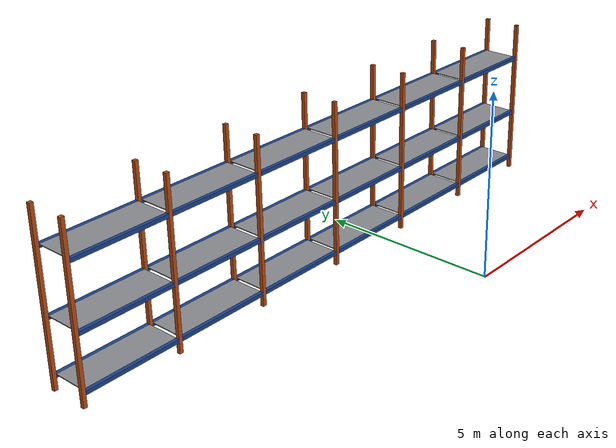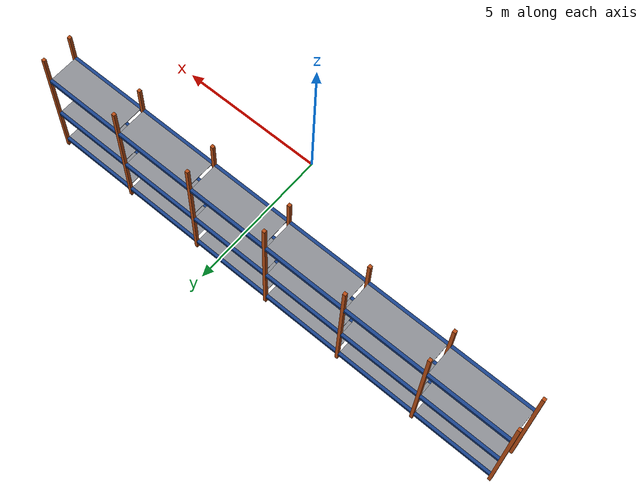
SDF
<sdf version="1.9">
 <world name="warehouse">
  <model name="rack_D">
   <static>true</static>
   <link name="frame">
    <visual name="up_0_f_v">
     <pose>-10 3.35 2.25 0 0 0</pose>
     <geometry><box><size>0.1 0.1 4.5</size></box></geometry>
     <material>
      <ambient>0.36 0.15 0.04 1</ambient>
      <diffuse>0.72 0.3 0.08 1</diffuse>
      <specular>0.05 0.05 0.05 1</specular>
      <pbr><metal><metalness>0.0</metalness><roughness>0.9</roughness></metal></pbr>
     </material>
    </visual>
    <collision name="up_0_f_c">
     <pose>-10 3.35 2.25 0 0 0</pose>
     <geometry><box><size>0.1 0.1 4.5</size></box></geometry>
    </collision>
    <visual name="up_0_b_v">
     <pose>-10 4.35 2.25 0 0 0</pose>
     <geometry><box><size>0.1 0.1 4.5</size></box></geometry>
     <material>
      <ambient>0.36 0.15 0.04 1</ambient>
      <diffuse>0.72 0.3 0.08 1</diffuse>
      <specular>0.05 0.05 0.05 1</specular>
      <pbr><metal><metalness>0.0</metalness><roughness>0.9</roughness></metal></pbr>
     </material>
    </visual>
    <collision name="up_0_b_c">
     <pose>-10 4.35 2.25 0 0 0</pose>
     <geometry><box><size>0.1 0.1 4.5</size></box></geometry>
    </collision>
    <visual name="up_1_f_v">
     <pose>-7.3 3.35 2.25 0 0 0</pose>
     <geometry><box><size>0.1 0.1 4.5</size></box></geometry>
     <material>
      <ambient>0.36 0.15 0.04 1</ambient>
      <diffuse>0.72 0.3 0.08 1</diffuse>
      <specular>0.05 0.05 0.05 1</specular>
      <pbr><metal><metalness>0.0</metalness><roughness>0.9</roughness></metal></pbr>
     </material>
    </visual>
    <collision name="up_1_f_c">
     <pose>-7.3 3.35 2.25 0 0 0</pose>
     <geometry><box><size>0.1 0.1 4.5</size></box></geometry>
    </collision>
    <visual name="up_1_b_v">
     <pose>-7.3 4.35 2.25 0 0 0</pose>
     <geometry><box><size>0.1 0.1 4.5</size></box></geometry>
     <material>
      <ambient>0.36 0.15 0.04 1</ambient>
      <diffuse>0.72 0.3 0.08 1</diffuse>
      <specular>0.05 0.05 0.05 1</specular>
      <pbr><metal><metalness>0.0</metalness><roughness>0.9</roughness></metal></pbr>
     </material>
    </visual>
    <collision name="up_1_b_c">
     <pose>-7.3 4.35 2.25 0 0 0</pose>
     <geometry><box><size>0.1 0.1 4.5</size></box></geometry>
    </collision>
    <visual name="up_2_f_v">
     <pose>-4.6 3.35 2.25 0 0 0</pose>
     <geometry><box><size>0.1 0.1 4.5</size></box></geometry>
     <material>
      <ambient>0.36 0.15 0.04 1</ambient>
      <diffuse>0.72 0.3 0.08 1</diffuse>
      <specular>0.05 0.05 0.05 1</specular>
      <pbr><metal><metalness>0.0</metalness><roughness>0.9</roughness></metal></pbr>
     </material>
    </visual>
    <collision name="up_2_f_c">
     <pose>-4.6 3.35 2.25 0 0 0</pose>
     <geometry><box><size>0.1 0.1 4.5</size></box></geometry>
    </collision>
    <visual name="up_2_b_v">
     <pose>-4.6 4.35 2.25 0 0 0</pose>
     <geometry><box><size>0.1 0.1 4.5</size></box></geometry>
     <material>
      <ambient>0.36 0.15 0.04 1</ambient>
      <diffuse>0.72 0.3 0.08 1</diffuse>
      <specular>0.05 0.05 0.05 1</specular>
      <pbr><metal><metalness>0.0</metalness><roughness>0.9</roughness></metal></pbr>
     </material>
    </visual>
    <collision name="up_2_b_c">
     <pose>-4.6 4.35 2.25 0 0 0</pose>
     <geometry><box><size>0.1 0.1 4.5</size></box></geometry>
    </collision>
    <visual name="up_3_f_v">
     <pose>-1.9 3.35 2.25 0 0 0</pose>
     <geometry><box><size>0.1 0.1 4.5</size></box></geometry>
     <material>
      <ambient>0.36 0.15 0.04 1</ambient>
      <diffuse>0.72 0.3 0.08 1</diffuse>
      <specular>0.05 0.05 0.05 1</specular>
      <pbr><metal><metalness>0.0</metalness><roughness>0.9</roughness></metal></pbr>
     </material>
    </visual>
    <collision name="up_3_f_c">
     <pose>-1.9 3.35 2.25 0 0 0</pose>
     <geometry><box><size>0.1 0.1 4.5</size></box></geometry>
    </collision>
    <visual name="up_3_b_v">
     <pose>-1.9 4.35 2.25 0 0 0</pose>
     <geometry><box><size>0.1 0.1 4.5</size></box></geometry>
     <material>
      <ambient>0.36 0.15 0.04 1</ambient>
      <diffuse>0.72 0.3 0.08 1</diffuse>
      <specular>0.05 0.05 0.05 1</specular>
      <pbr><metal><metalness>0.0</metalness><roughness>0.9</roughness></metal></pbr>
     </material>
    </visual>
    <collision name="up_3_b_c">
     <pose>-1.9 4.35 2.25 0 0 0</pose>
     <geometry><box><size>0.1 0.1 4.5</size></box></geometry>
    </collision>
    <visual name="up_4_f_v">
     <pose>0.8 3.35 2.25 0 0 0</pose>
     <geometry><box><size>0.1 0.1 4.5</size></box></geometry>
     <material>
      <ambient>0.36 0.15 0.04 1</ambient>
      <diffuse>0.72 0.3 0.08 1</diffuse>
      <specular>0.05 0.05 0.05 1</specular>
      <pbr><metal><metalness>0.0</metalness><roughness>0.9</roughness></metal></pbr>
     </material>
    </visual>
    <collision name="up_4_f_c">
     <pose>0.8 3.35 2.25 0 0 0</pose>
     <geometry><box><size>0.1 0.1 4.5</size></box></geometry>
    </collision>
    <visual name="up_4_b_v">
     <pose>0.8 4.35 2.25 0 0 0</pose>
     <geometry><box><size>0.1 0.1 4.5</size></box></geometry>
     <material>
      <ambient>0.36 0.15 0.04 1</ambient>
      <diffuse>0.72 0.3 0.08 1</diffuse>
      <specular>0.05 0.05 0.05 1</specular>
      <pbr><metal><metalness>0.0</metalness><roughness>0.9</roughness></metal></pbr>
     </material>
    </visual>
    <collision name="up_4_b_c">
     <pose>0.8 4.35 2.25 0 0 0</pose>
     <geometry><box><size>0.1 0.1 4.5</size></box></geometry>
    </collision>
    <visual name="up_5_f_v">
     <pose>3.5 3.35 2.25 0 0 0</pose>
     <geometry><box><size>0.1 0.1 4.5</size></box></geometry>
     <material>
      <ambient>0.36 0.15 0.04 1</ambient>
      <diffuse>0.72 0.3 0.08 1</diffuse>
      <specular>0.05 0.05 0.05 1</specular>
      <pbr><metal><metalness>0.0</metalness><roughness>0.9</roughness></metal></pbr>
     </material>
    </visual>
    <collision name="up_5_f_c">
     <pose>3.5 3.35 2.25 0 0 0</pose>
     <geometry><box><size>0.1 0.1 4.5</size></box></geometry>
    </collision>
    <visual name="up_5_b_v">
     <pose>3.5 4.35 2.25 0 0 0</pose>
     <geometry><box><size>0.1 0.1 4.5</size></box></geometry>
     <material>
      <ambient>0.36 0.15 0.04 1</ambient>
      <diffuse>0.72 0.3 0.08 1</diffuse>
      <specular>0.05 0.05 0.05 1</specular>
      <pbr><metal><metalness>0.0</metalness><roughness>0.9</roughness></metal></pbr>
     </material>
    </visual>
    <collision name="up_5_b_c">
     <pose>3.5 4.35 2.25 0 0 0</pose>
     <geometry><box><size>0.1 0.1 4.5</size></box></geometry>
    </collision>
    <visual name="up_6_f_v">
     <pose>6.2 3.35 2.25 0 0 0</pose>
     <geometry><box><size>0.1 0.1 4.5</size></box></geometry>
     <material>
      <ambient>0.36 0.15 0.04 1</ambient>
      <diffuse>0.72 0.3 0.08 1</diffuse>
      <specular>0.05 0.05 0.05 1</specular>
      <pbr><metal><metalness>0.0</metalness><roughness>0.9</roughness></metal></pbr>
     </material>
    </visual>
    <collision name="up_6_f_c">
     <pose>6.2 3.35 2.25 0 0 0</pose>
     <geometry><box><size>0.1 0.1 4.5</size></box></geometry>
    </collision>
    <visual name="up_6_b_v">
     <pose>6.2 4.35 2.25 0 0 0</pose>
     <geometry><box><size>0.1 0.1 4.5</size></box></geometry>
     <material>
      <ambient>0.36 0.15 0.04 1</ambient>
      <diffuse>0.72 0.3 0.08 1</diffuse>
      <specular>0.05 0.05 0.05 1</specular>
      <pbr><metal><metalness>0.0</metalness><roughness>0.9</roughness></metal></pbr>
     </material>
    </visual>
    <collision name="up_6_b_c">
     <pose>6.2 4.35 2.25 0 0 0</pose>
     <geometry><box><size>0.1 0.1 4.5</size></box></geometry>
    </collision>
    <visual name="beam_0_0_f_v">
     <pose>-8.65 3.35 0.35 0 0 0</pose>
     <geometry><box><size>2.6 0.1 0.1</size></box></geometry>
     <material>
      <ambient>0.05 0.13 0.275 1</ambient>
      <diffuse>0.1 0.26 0.55 1</diffuse>
      <specular>0.05 0.05 0.05 1</specular>
      <pbr><metal><metalness>0.0</metalness><roughness>0.9</roughness></metal></pbr>
     </material>
    </visual>
    <collision name="beam_0_0_f_c">
     <pose>-8.65 3.35 0.35 0 0 0</pose>
     <geometry><box><size>2.6 0.1 0.1</size></box></geometry>
    </collision>
    <visual name="beam_0_0_b_v">
     <pose>-8.65 4.35 0.35 0 0 0</pose>
     <geometry><box><size>2.6 0.1 0.1</size></box></geometry>
     <material>
      <ambient>0.05 0.13 0.275 1</ambient>
      <diffuse>0.1 0.26 0.55 1</diffuse>
      <specular>0.05 0.05 0.05 1</specular>
      <pbr><metal><metalness>0.0</metalness><roughness>0.9</roughness></metal></pbr>
     </material>
    </visual>
    <collision name="beam_0_0_b_c">
     <pose>-8.65 4.35 0.35 0 0 0</pose>
     <geometry><box><size>2.6 0.1 0.1</size></box></geometry>
    </collision>
    <visual name="deck_0_0_v">
     <pose>-8.65 3.85 0.39 0 0 0</pose>
     <geometry><box><size>2.6 0.9 0.02</size></box></geometry>
     <material>
      <ambient>0.275 0.28 0.29 1</ambient>
      <diffuse>0.55 0.56 0.58 1</diffuse>
      <specular>0.05 0.05 0.05 1</specular>
      <pbr><metal><metalness>0.0</metalness><roughness>0.9</roughness></metal></pbr>
     </material>
    </visual>
    <collision name="deck_0_0_c">
     <pose>-8.65 3.85 0.39 0 0 0</pose>
     <geometry><box><size>2.6 0.9 0.02</size></box></geometry>
    </collision>
    <visual name="beam_0_1_f_v">
     <pose>-5.95 3.35 0.35 0 0 0</pose>
     <geometry><box><size>2.6 0.1 0.1</size></box></geometry>
     <material>
      <ambient>0.05 0.13 0.275 1</ambient>
      <diffuse>0.1 0.26 0.55 1</diffuse>
      <specular>0.05 0.05 0.05 1</specular>
      <pbr><metal><metalness>0.0</metalness><roughness>0.9</roughness></metal></pbr>
     </material>
    </visual>
    <collision name="beam_0_1_f_c">
     <pose>-5.95 3.35 0.35 0 0 0</pose>
     <geometry><box><size>2.6 0.1 0.1</size></box></geometry>
    </collision>
    <visual name="beam_0_1_b_v">
     <pose>-5.95 4.35 0.35 0 0 0</pose>
     <geometry><box><size>2.6 0.1 0.1</size></box></geometry>
     <material>
      <ambient>0.05 0.13 0.275 1</ambient>
      <diffuse>0.1 0.26 0.55 1</diffuse>
      <specular>0.05 0.05 0.05 1</specular>
      <pbr><metal><metalness>0.0</metalness><roughness>0.9</roughness></metal></pbr>
     </material>
    </visual>
    <collision name="beam_0_1_b_c">
     <pose>-5.95 4.35 0.35 0 0 0</pose>
     <geometry><box><size>2.6 0.1 0.1</size></box></geometry>
    </collision>
    <visual name="deck_0_1_v">
     <pose>-5.95 3.85 0.39 0 0 0</pose>
     <geometry><box><size>2.6 0.9 0.02</size></box></geometry>
     <material>
      <ambient>0.275 0.28 0.29 1</ambient>
      <diffuse>0.55 0.56 0.58 1</diffuse>
      <specular>0.05 0.05 0.05 1</specular>
      <pbr><metal><metalness>0.0</metalness><roughness>0.9</roughness></metal></pbr>
     </material>
    </visual>
    <collision name="deck_0_1_c">
     <pose>-5.95 3.85 0.39 0 0 0</pose>
     <geometry><box><size>2.6 0.9 0.02</size></box></geometry>
    </collision>
    <visual name="beam_0_2_f_v">
     <pose>-3.25 3.35 0.35 0 0 0</pose>
     <geometry><box><size>2.6 0.1 0.1</size></box></geometry>
     <material>
      <ambient>0.05 0.13 0.275 1</ambient>
      <diffuse>0.1 0.26 0.55 1</diffuse>
      <specular>0.05 0.05 0.05 1</specular>
      <pbr><metal><metalness>0.0</metalness><roughness>0.9</roughness></metal></pbr>
     </material>
    </visual>
    <collision name="beam_0_2_f_c">
     <pose>-3.25 3.35 0.35 0 0 0</pose>
     <geometry><box><size>2.6 0.1 0.1</size></box></geometry>
    </collision>
    <visual name="beam_0_2_b_v">
     <pose>-3.25 4.35 0.35 0 0 0</pose>
     <geometry><box><size>2.6 0.1 0.1</size></box></geometry>
     <material>
      <ambient>0.05 0.13 0.275 1</ambient>
      <diffuse>0.1 0.26 0.55 1</diffuse>
      <specular>0.05 0.05 0.05 1</specular>
      <pbr><metal><metalness>0.0</metalness><roughness>0.9</roughness></metal></pbr>
     </material>
    </visual>
    <collision name="beam_0_2_b_c">
     <pose>-3.25 4.35 0.35 0 0 0</pose>
     <geometry><box><size>2.6 0.1 0.1</size></box></geometry>
    </collision>
    <visual name="deck_0_2_v">
     <pose>-3.25 3.85 0.39 0 0 0</pose>
     <geometry><box><size>2.6 0.9 0.02</size></box></geometry>
     <material>
      <ambient>0.275 0.28 0.29 1</ambient>
      <diffuse>0.55 0.56 0.58 1</diffuse>
      <specular>0.05 0.05 0.05 1</specular>
      <pbr><metal><metalness>0.0</metalness><roughness>0.9</roughness></metal></pbr>
     </material>
    </visual>
    <collision name="deck_0_2_c">
     <pose>-3.25 3.85 0.39 0 0 0</pose>
     <geometry><box><size>2.6 0.9 0.02</size></box></geometry>
    </collision>
    <visual name="beam_0_3_f_v">
     <pose>-0.55 3.35 0.35 0 0 0</pose>
     <geometry><box><size>2.6 0.1 0.1</size></box></geometry>
     <material>
      <ambient>0.05 0.13 0.275 1</ambient>
      <diffuse>0.1 0.26 0.55 1</diffuse>
      <specular>0.05 0.05 0.05 1</specular>
      <pbr><metal><metalness>0.0</metalness><roughness>0.9</roughness></metal></pbr>
     </material>
    </visual>
    <collision name="beam_0_3_f_c">
     <pose>-0.55 3.35 0.35 0 0 0</pose>
     <geometry><box><size>2.6 0.1 0.1</size></box></geometry>
    </collision>
    <visual name="beam_0_3_b_v">
     <pose>-0.55 4.35 0.35 0 0 0</pose>
     <geometry><box><size>2.6 0.1 0.1</size></box></geometry>
     <material>
      <ambient>0.05 0.13 0.275 1</ambient>
      <diffuse>0.1 0.26 0.55 1</diffuse>
      <specular>0.05 0.05 0.05 1</specular>
      <pbr><metal><metalness>0.0</metalness><roughness>0.9</roughness></metal></pbr>
     </material>
    </visual>
    <collision name="beam_0_3_b_c">
     <pose>-0.55 4.35 0.35 0 0 0</pose>
     <geometry><box><size>2.6 0.1 0.1</size></box></geometry>
    </collision>
    <visual name="deck_0_3_v">
     <pose>-0.55 3.85 0.39 0 0 0</pose>
     <geometry><box><size>2.6 0.9 0.02</size></box></geometry>
     <material>
      <ambient>0.275 0.28 0.29 1</ambient>
      <diffuse>0.55 0.56 0.58 1</diffuse>
      <specular>0.05 0.05 0.05 1</specular>
      <pbr><metal><metalness>0.0</metalness><roughness>0.9</roughness></metal></pbr>
     </material>
    </visual>
    <collision name="deck_0_3_c">
     <pose>-0.55 3.85 0.39 0 0 0</pose>
     <geometry><box><size>2.6 0.9 0.02</size></box></geometry>
    </collision>
    <visual name="beam_0_4_f_v">
     <pose>2.15 3.35 0.35 0 0 0</pose>
     <geometry><box><size>2.6 0.1 0.1</size></box></geometry>
     <material>
      <ambient>0.05 0.13 0.275 1</ambient>
      <diffuse>0.1 0.26 0.55 1</diffuse>
      <specular>0.05 0.05 0.05 1</specular>
      <pbr><metal><metalness>0.0</metalness><roughness>0.9</roughness></metal></pbr>
     </material>
    </visual>
    <collision name="beam_0_4_f_c">
     <pose>2.15 3.35 0.35 0 0 0</pose>
     <geometry><box><size>2.6 0.1 0.1</size></box></geometry>
    </collision>
    <visual name="beam_0_4_b_v">
     <pose>2.15 4.35 0.35 0 0 0</pose>
     <geometry><box><size>2.6 0.1 0.1</size></box></geometry>
     <material>
      <ambient>0.05 0.13 0.275 1</ambient>
      <diffuse>0.1 0.26 0.55 1</diffuse>
      <specular>0.05 0.05 0.05 1</specular>
      <pbr><metal><metalness>0.0</metalness><roughness>0.9</roughness></metal></pbr>
     </material>
    </visual>
    <collision name="beam_0_4_b_c">
     <pose>2.15 4.35 0.35 0 0 0</pose>
     <geometry><box><size>2.6 0.1 0.1</size></box></geometry>
    </collision>
    <visual name="deck_0_4_v">
     <pose>2.15 3.85 0.39 0 0 0</pose>
     <geometry><box><size>2.6 0.9 0.02</size></box></geometry>
     <material>
      <ambient>0.275 0.28 0.29 1</ambient>
      <diffuse>0.55 0.56 0.58 1</diffuse>
      <specular>0.05 0.05 0.05 1</specular>
      <pbr><metal><metalness>0.0</metalness><roughness>0.9</roughness></metal></pbr>
     </material>
    </visual>
    <collision name="deck_0_4_c">
     <pose>2.15 3.85 0.39 0 0 0</pose>
     <geometry><box><size>2.6 0.9 0.02</size></box></geometry>
    </collision>
    <visual name="beam_0_5_f_v">
     <pose>4.85 3.35 0.35 0 0 0</pose>
     <geometry><box><size>2.6 0.1 0.1</size></box></geometry>
     <material>
      <ambient>0.05 0.13 0.275 1</ambient>
      <diffuse>0.1 0.26 0.55 1</diffuse>
      <specular>0.05 0.05 0.05 1</specular>
      <pbr><metal><metalness>0.0</metalness><roughness>0.9</roughness></metal></pbr>
     </material>
    </visual>
    <collision name="beam_0_5_f_c">
     <pose>4.85 3.35 0.35 0 0 0</pose>
     <geometry><box><size>2.6 0.1 0.1</size></box></geometry>
    </collision>
    <visual name="beam_0_5_b_v">
     <pose>4.85 4.35 0.35 0 0 0</pose>
     <geometry><box><size>2.6 0.1 0.1</size></box></geometry>
     <material>
      <ambient>0.05 0.13 0.275 1</ambient>
      <diffuse>0.1 0.26 0.55 1</diffuse>
      <specular>0.05 0.05 0.05 1</specular>
      <pbr><metal><metalness>0.0</metalness><roughness>0.9</roughness></metal></pbr>
     </material>
    </visual>
    <collision name="beam_0_5_b_c">
     <pose>4.85 4.35 0.35 0 0 0</pose>
     <geometry><box><size>2.6 0.1 0.1</size></box></geometry>
    </collision>
    <visual name="deck_0_5_v">
     <pose>4.85 3.85 0.39 0 0 0</pose>
     <geometry><box><size>2.6 0.9 0.02</size></box></geometry>
     <material>
      <ambient>0.275 0.28 0.29 1</ambient>
      <diffuse>0.55 0.56 0.58 1</diffuse>
      <specular>0.05 0.05 0.05 1</specular>
      <pbr><metal><metalness>0.0</metalness><roughness>0.9</roughness></metal></pbr>
     </material>
    </visual>
    <collision name="deck_0_5_c">
     <pose>4.85 3.85 0.39 0 0 0</pose>
     <geometry><box><size>2.6 0.9 0.02</size></box></geometry>
    </collision>
    <visual name="beam_1_0_f_v">
     <pose>-8.65 3.35 1.8 0 0 0</pose>
     <geometry><box><size>2.6 0.1 0.1</size></box></geometry>
     <material>
      <ambient>0.05 0.13 0.275 1</ambient>
      <diffuse>0.1 0.26 0.55 1</diffuse>
      <specular>0.05 0.05 0.05 1</specular>
      <pbr><metal><metalness>0.0</metalness><roughness>0.9</roughness></metal></pbr>
     </material>
    </visual>
    <collision name="beam_1_0_f_c">
     <pose>-8.65 3.35 1.8 0 0 0</pose>
     <geometry><box><size>2.6 0.1 0.1</size></box></geometry>
    </collision>
    <visual name="beam_1_0_b_v">
     <pose>-8.65 4.35 1.8 0 0 0</pose>
     <geometry><box><size>2.6 0.1 0.1</size></box></geometry>
     <material>
      <ambient>0.05 0.13 0.275 1</ambient>
      <diffuse>0.1 0.26 0.55 1</diffuse>
      <specular>0.05 0.05 0.05 1</specular>
      <pbr><metal><metalness>0.0</metalness><roughness>0.9</roughness></metal></pbr>
     </material>
    </visual>
    <collision name="beam_1_0_b_c">
     <pose>-8.65 4.35 1.8 0 0 0</pose>
     <geometry><box><size>2.6 0.1 0.1</size></box></geometry>
    </collision>
    <visual name="deck_1_0_v">
     <pose>-8.65 3.85 1.84 0 0 0</pose>
     <geometry><box><size>2.6 0.9 0.02</size></box></geometry>
     <material>
      <ambient>0.275 0.28 0.29 1</ambient>
      <diffuse>0.55 0.56 0.58 1</diffuse>
      <specular>0.05 0.05 0.05 1</specular>
      <pbr><metal><metalness>0.0</metalness><roughness>0.9</roughness></metal></pbr>
     </material>
    </visual>
    <collision name="deck_1_0_c">
     <pose>-8.65 3.85 1.84 0 0 0</pose>
     <geometry><box><size>2.6 0.9 0.02</size></box></geometry>
    </collision>
    <visual name="beam_1_1_f_v">
     <pose>-5.95 3.35 1.8 0 0 0</pose>
     <geometry><box><size>2.6 0.1 0.1</size></box></geometry>
     <material>
      <ambient>0.05 0.13 0.275 1</ambient>
      <diffuse>0.1 0.26 0.55 1</diffuse>
      <specular>0.05 0.05 0.05 1</specular>
      <pbr><metal><metalness>0.0</metalness><roughness>0.9</roughness></metal></pbr>
     </material>
    </visual>
    <collision name="beam_1_1_f_c">
     <pose>-5.95 3.35 1.8 0 0 0</pose>
     <geometry><box><size>2.6 0.1 0.1</size></box></geometry>
    </collision>
    <visual name="beam_1_1_b_v">
     <pose>-5.95 4.35 1.8 0 0 0</pose>
     <geometry><box><size>2.6 0.1 0.1</size></box></geometry>
     <material>
      <ambient>0.05 0.13 0.275 1</ambient>
      <diffuse>0.1 0.26 0.55 1</diffuse>
      <specular>0.05 0.05 0.05 1</specular>
      <pbr><metal><metalness>0.0</metalness><roughness>0.9</roughness></metal></pbr>
     </material>
    </visual>
    <collision name="beam_1_1_b_c">
     <pose>-5.95 4.35 1.8 0 0 0</pose>
     <geometry><box><size>2.6 0.1 0.1</size></box></geometry>
    </collision>
    <visual name="deck_1_1_v">
     <pose>-5.95 3.85 1.84 0 0 0</pose>
     <geometry><box><size>2.6 0.9 0.02</size></box></geometry>
     <material>
      <ambient>0.275 0.28 0.29 1</ambient>
      <diffuse>0.55 0.56 0.58 1</diffuse>
      <specular>0.05 0.05 0.05 1</specular>
      <pbr><metal><metalness>0.0</metalness><roughness>0.9</roughness></metal></pbr>
     </material>
    </visual>
    <collision name="deck_1_1_c">
     <pose>-5.95 3.85 1.84 0 0 0</pose>
     <geometry><box><size>2.6 0.9 0.02</size></box></geometry>
    </collision>
    <visual name="beam_1_2_f_v">
     <pose>-3.25 3.35 1.8 0 0 0</pose>
     <geometry><box><size>2.6 0.1 0.1</size></box></geometry>
     <material>
      <ambient>0.05 0.13 0.275 1</ambient>
      <diffuse>0.1 0.26 0.55 1</diffuse>
      <specular>0.05 0.05 0.05 1</specular>
      <pbr><metal><metalness>0.0</metalness><roughness>0.9</roughness></metal></pbr>
     </material>
    </visual>
    <collision name="beam_1_2_f_c">
     <pose>-3.25 3.35 1.8 0 0 0</pose>
     <geometry><box><size>2.6 0.1 0.1</size></box></geometry>
    </collision>
    <visual name="beam_1_2_b_v">
     <pose>-3.25 4.35 1.8 0 0 0</pose>
     <geometry><box><size>2.6 0.1 0.1</size></box></geometry>
     <material>
      <ambient>0.05 0.13 0.275 1</ambient>
      <diffuse>0.1 0.26 0.55 1</diffuse>
      <specular>0.05 0.05 0.05 1</specular>
      <pbr><metal><metalness>0.0</metalness><roughness>0.9</roughness></metal></pbr>
     </material>
    </visual>
    <collision name="beam_1_2_b_c">
     <pose>-3.25 4.35 1.8 0 0 0</pose>
     <geometry><box><size>2.6 0.1 0.1</size></box></geometry>
    </collision>
    <visual name="deck_1_2_v">
     <pose>-3.25 3.85 1.84 0 0 0</pose>
     <geometry><box><size>2.6 0.9 0.02</size></box></geometry>
     <material>
      <ambient>0.275 0.28 0.29 1</ambient>
      <diffuse>0.55 0.56 0.58 1</diffuse>
      <specular>0.05 0.05 0.05 1</specular>
      <pbr><metal><metalness>0.0</metalness><roughness>0.9</roughness></metal></pbr>
     </material>
    </visual>
    <collision name="deck_1_2_c">
     <pose>-3.25 3.85 1.84 0 0 0</pose>
     <geometry><box><size>2.6 0.9 0.02</size></box></geometry>
    </collision>
    <visual name="beam_1_3_f_v">
     <pose>-0.55 3.35 1.8 0 0 0</pose>
     <geometry><box><size>2.6 0.1 0.1</size></box></geometry>
     <material>
      <ambient>0.05 0.13 0.275 1</ambient>
      <diffuse>0.1 0.26 0.55 1</diffuse>
      <specular>0.05 0.05 0.05 1</specular>
      <pbr><metal><metalness>0.0</metalness><roughness>0.9</roughness></metal></pbr>
     </material>
    </visual>
    <collision name="beam_1_3_f_c">
     <pose>-0.55 3.35 1.8 0 0 0</pose>
     <geometry><box><size>2.6 0.1 0.1</size></box></geometry>
    </collision>
    <visual name="beam_1_3_b_v">
     <pose>-0.55 4.35 1.8 0 0 0</pose>
     <geometry><box><size>2.6 0.1 0.1</size></box></geometry>
     <material>
      <ambient>0.05 0.13 0.275 1</ambient>
      <diffuse>0.1 0.26 0.55 1</diffuse>
      <specular>0.05 0.05 0.05 1</specular>
      <pbr><metal><metalness>0.0</metalness><roughness>0.9</roughness></metal></pbr>
     </material>
    </visual>
    <collision name="beam_1_3_b_c">
     <pose>-0.55 4.35 1.8 0 0 0</pose>
     <geometry><box><size>2.6 0.1 0.1</size></box></geometry>
    </collision>
    <visual name="deck_1_3_v">
     <pose>-0.55 3.85 1.84 0 0 0</pose>
     <geometry><box><size>2.6 0.9 0.02</size></box></geometry>
     <material>
      <ambient>0.275 0.28 0.29 1</ambient>
      <diffuse>0.55 0.56 0.58 1</diffuse>
      <specular>0.05 0.05 0.05 1</specular>
      <pbr><metal><metalness>0.0</metalness><roughness>0.9</roughness></metal></pbr>
     </material>
    </visual>
    <collision name="deck_1_3_c">
     <pose>-0.55 3.85 1.84 0 0 0</pose>
     <geometry><box><size>2.6 0.9 0.02</size></box></geometry>
    </collision>
    <visual name="beam_1_4_f_v">
     <pose>2.15 3.35 1.8 0 0 0</pose>
     <geometry><box><size>2.6 0.1 0.1</size></box></geometry>
     <material>
      <ambient>0.05 0.13 0.275 1</ambient>
      <diffuse>0.1 0.26 0.55 1</diffuse>
      <specular>0.05 0.05 0.05 1</specular>
      <pbr><metal><metalness>0.0</metalness><roughness>0.9</roughness></metal></pbr>
     </material>
    </visual>
    <collision name="beam_1_4_f_c">
     <pose>2.15 3.35 1.8 0 0 0</pose>
     <geometry><box><size>2.6 0.1 0.1</size></box></geometry>
    </collision>
    <visual name="beam_1_4_b_v">
     <pose>2.15 4.35 1.8 0 0 0</pose>
     <geometry><box><size>2.6 0.1 0.1</size></box></geometry>
     <material>
      <ambient>0.05 0.13 0.275 1</ambient>
      <diffuse>0.1 0.26 0.55 1</diffuse>
      <specular>0.05 0.05 0.05 1</specular>
      <pbr><metal><metalness>0.0</metalness><roughness>0.9</roughness></metal></pbr>
     </material>
    </visual>
    <collision name="beam_1_4_b_c">
     <pose>2.15 4.35 1.8 0 0 0</pose>
     <geometry><box><size>2.6 0.1 0.1</size></box></geometry>
    </collision>
    <visual name="deck_1_4_v">
     <pose>2.15 3.85 1.84 0 0 0</pose>
     <geometry><box><size>2.6 0.9 0.02</size></box></geometry>
     <material>
      <ambient>0.275 0.28 0.29 1</ambient>
      <diffuse>0.55 0.56 0.58 1</diffuse>
      <specular>0.05 0.05 0.05 1</specular>
      <pbr><metal><metalness>0.0</metalness><roughness>0.9</roughness></metal></pbr>
     </material>
    </visual>
    <collision name="deck_1_4_c">
     <pose>2.15 3.85 1.84 0 0 0</pose>
     <geometry><box><size>2.6 0.9 0.02</size></box></geometry>
    </collision>
    <visual name="beam_1_5_f_v">
     <pose>4.85 3.35 1.8 0 0 0</pose>
     <geometry><box><size>2.6 0.1 0.1</size></box></geometry>
     <material>
      <ambient>0.05 0.13 0.275 1</ambient>
      <diffuse>0.1 0.26 0.55 1</diffuse>
      <specular>0.05 0.05 0.05 1</specular>
      <pbr><metal><metalness>0.0</metalness><roughness>0.9</roughness></metal></pbr>
     </material>
    </visual>
    <collision name="beam_1_5_f_c">
     <pose>4.85 3.35 1.8 0 0 0</pose>
     <geometry><box><size>2.6 0.1 0.1</size></box></geometry>
    </collision>
    <visual name="beam_1_5_b_v">
     <pose>4.85 4.35 1.8 0 0 0</pose>
     <geometry><box><size>2.6 0.1 0.1</size></box></geometry>
     <material>
      <ambient>0.05 0.13 0.275 1</ambient>
      <diffuse>0.1 0.26 0.55 1</diffuse>
      <specular>0.05 0.05 0.05 1</specular>
      <pbr><metal><metalness>0.0</metalness><roughness>0.9</roughness></metal></pbr>
     </material>
    </visual>
    <collision name="beam_1_5_b_c">
     <pose>4.85 4.35 1.8 0 0 0</pose>
     <geometry><box><size>2.6 0.1 0.1</size></box></geometry>
    </collision>
    <visual name="deck_1_5_v">
     <pose>4.85 3.85 1.84 0 0 0</pose>
     <geometry><box><size>2.6 0.9 0.02</size></box></geometry>
     <material>
      <ambient>0.275 0.28 0.29 1</ambient>
      <diffuse>0.55 0.56 0.58 1</diffuse>
      <specular>0.05 0.05 0.05 1</specular>
      <pbr><metal><metalness>0.0</metalness><roughness>0.9</roughness></metal></pbr>
     </material>
    </visual>
    <collision name="deck_1_5_c">
     <pose>4.85 3.85 1.84 0 0 0</pose>
     <geometry><box><size>2.6 0.9 0.02</size></box></geometry>
    </collision>
    <visual name="beam_2_0_f_v">
     <pose>-8.65 3.35 3.5 0 0 0</pose>
     <geometry><box><size>2.6 0.1 0.1</size></box></geometry>
     <material>
      <ambient>0.05 0.13 0.275 1</ambient>
      <diffuse>0.1 0.26 0.55 1</diffuse>
      <specular>0.05 0.05 0.05 1</specular>
      <pbr><metal><metalness>0.0</metalness><roughness>0.9</roughness></metal></pbr>
     </material>
    </visual>
    <collision name="beam_2_0_f_c">
     <pose>-8.65 3.35 3.5 0 0 0</pose>
     <geometry><box><size>2.6 0.1 0.1</size></box></geometry>
    </collision>
    <visual name="beam_2_0_b_v">
     <pose>-8.65 4.35 3.5 0 0 0</pose>
     <geometry><box><size>2.6 0.1 0.1</size></box></geometry>
     <material>
      <ambient>0.05 0.13 0.275 1</ambient>
      <diffuse>0.1 0.26 0.55 1</diffuse>
      <specular>0.05 0.05 0.05 1</specular>
      <pbr><metal><metalness>0.0</metalness><roughness>0.9</roughness></metal></pbr>
     </material>
    </visual>
    <collision name="beam_2_0_b_c">
     <pose>-8.65 4.35 3.5 0 0 0</pose>
     <geometry><box><size>2.6 0.1 0.1</size></box></geometry>
    </collision>
    <visual name="deck_2_0_v">
     <pose>-8.65 3.85 3.54 0 0 0</pose>
     <geometry><box><size>2.6 0.9 0.02</size></box></geometry>
     <material>
      <ambient>0.275 0.28 0.29 1</ambient>
      <diffuse>0.55 0.56 0.58 1</diffuse>
      <specular>0.05 0.05 0.05 1</specular>
      <pbr><metal><metalness>0.0</metalness><roughness>0.9</roughness></metal></pbr>
     </material>
    </visual>
    <collision name="deck_2_0_c">
     <pose>-8.65 3.85 3.54 0 0 0</pose>
     <geometry><box><size>2.6 0.9 0.02</size></box></geometry>
    </collision>
    <visual name="beam_2_1_f_v">
     <pose>-5.95 3.35 3.5 0 0 0</pose>
     <geometry><box><size>2.6 0.1 0.1</size></box></geometry>
     <material>
      <ambient>0.05 0.13 0.275 1</ambient>
      <diffuse>0.1 0.26 0.55 1</diffuse>
      <specular>0.05 0.05 0.05 1</specular>
      <pbr><metal><metalness>0.0</metalness><roughness>0.9</roughness></metal></pbr>
     </material>
    </visual>
    <collision name="beam_2_1_f_c">
     <pose>-5.95 3.35 3.5 0 0 0</pose>
     <geometry><box><size>2.6 0.1 0.1</size></box></geometry>
    </collision>
    <visual name="beam_2_1_b_v">
     <pose>-5.95 4.35 3.5 0 0 0</pose>
     <geometry><box><size>2.6 0.1 0.1</size></box></geometry>
     <material>
      <ambient>0.05 0.13 0.275 1</ambient>
      <diffuse>0.1 0.26 0.55 1</diffuse>
      <specular>0.05 0.05 0.05 1</specular>
      <pbr><metal><metalness>0.0</metalness><roughness>0.9</roughness></metal></pbr>
     </material>
    </visual>
    <collision name="beam_2_1_b_c">
     <pose>-5.95 4.35 3.5 0 0 0</pose>
     <geometry><box><size>2.6 0.1 0.1</size></box></geometry>
    </collision>
    <visual name="deck_2_1_v">
     <pose>-5.95 3.85 3.54 0 0 0</pose>
     <geometry><box><size>2.6 0.9 0.02</size></box></geometry>
     <material>
      <ambient>0.275 0.28 0.29 1</ambient>
      <diffuse>0.55 0.56 0.58 1</diffuse>
      <specular>0.05 0.05 0.05 1</specular>
      <pbr><metal><metalness>0.0</metalness><roughness>0.9</roughness></metal></pbr>
     </material>
    </visual>
    <collision name="deck_2_1_c">
     <pose>-5.95 3.85 3.54 0 0 0</pose>
     <geometry><box><size>2.6 0.9 0.02</size></box></geometry>
    </collision>
    <visual name="beam_2_2_f_v">
     <pose>-3.25 3.35 3.5 0 0 0</pose>
     <geometry><box><size>2.6 0.1 0.1</size></box></geometry>
     <material>
      <ambient>0.05 0.13 0.275 1</ambient>
      <diffuse>0.1 0.26 0.55 1</diffuse>
      <specular>0.05 0.05 0.05 1</specular>
      <pbr><metal><metalness>0.0</metalness><roughness>0.9</roughness></metal></pbr>
     </material>
    </visual>
    <collision name="beam_2_2_f_c">
     <pose>-3.25 3.35 3.5 0 0 0</pose>
     <geometry><box><size>2.6 0.1 0.1</size></box></geometry>
    </collision>
    <visual name="beam_2_2_b_v">
     <pose>-3.25 4.35 3.5 0 0 0</pose>
     <geometry><box><size>2.6 0.1 0.1</size></box></geometry>
     <material>
      <ambient>0.05 0.13 0.275 1</ambient>
      <diffuse>0.1 0.26 0.55 1</diffuse>
      <specular>0.05 0.05 0.05 1</specular>
      <pbr><metal><metalness>0.0</metalness><roughness>0.9</roughness></metal></pbr>
     </material>
    </visual>
    <collision name="beam_2_2_b_c">
     <pose>-3.25 4.35 3.5 0 0 0</pose>
     <geometry><box><size>2.6 0.1 0.1</size></box></geometry>
    </collision>
    <visual name="deck_2_2_v">
     <pose>-3.25 3.85 3.54 0 0 0</pose>
     <geometry><box><size>2.6 0.9 0.02</size></box></geometry>
     <material>
      <ambient>0.275 0.28 0.29 1</ambient>
      <diffuse>0.55 0.56 0.58 1</diffuse>
      <specular>0.05 0.05 0.05 1</specular>
      <pbr><metal><metalness>0.0</metalness><roughness>0.9</roughness></metal></pbr>
     </material>
    </visual>
    <collision name="deck_2_2_c">
     <pose>-3.25 3.85 3.54 0 0 0</pose>
     <geometry><box><size>2.6 0.9 0.02</size></box></geometry>
    </collision>
    <visual name="beam_2_3_f_v">
     <pose>-0.55 3.35 3.5 0 0 0</pose>
     <geometry><box><size>2.6 0.1 0.1</size></box></geometry>
     <material>
      <ambient>0.05 0.13 0.275 1</ambient>
      <diffuse>0.1 0.26 0.55 1</diffuse>
      <specular>0.05 0.05 0.05 1</specular>
      <pbr><metal><metalness>0.0</metalness><roughness>0.9</roughness></metal></pbr>
     </material>
    </visual>
    <collision name="beam_2_3_f_c">
     <pose>-0.55 3.35 3.5 0 0 0</pose>
     <geometry><box><size>2.6 0.1 0.1</size></box></geometry>
    </collision>
    <visual name="beam_2_3_b_v">
     <pose>-0.55 4.35 3.5 0 0 0</pose>
     <geometry><box><size>2.6 0.1 0.1</size></box></geometry>
     <material>
      <ambient>0.05 0.13 0.275 1</ambient>
      <diffuse>0.1 0.26 0.55 1</diffuse>
      <specular>0.05 0.05 0.05 1</specular>
      <pbr><metal><metalness>0.0</metalness><roughness>0.9</roughness></metal></pbr>
     </material>
    </visual>
    <collision name="beam_2_3_b_c">
     <pose>-0.55 4.35 3.5 0 0 0</pose>
     <geometry><box><size>2.6 0.1 0.1</size></box></geometry>
    </collision>
    <visual name="deck_2_3_v">
     <pose>-0.55 3.85 3.54 0 0 0</pose>
     <geometry><box><size>2.6 0.9 0.02</size></box></geometry>
     <material>
      <ambient>0.275 0.28 0.29 1</ambient>
      <diffuse>0.55 0.56 0.58 1</diffuse>
      <specular>0.05 0.05 0.05 1</specular>
      <pbr><metal><metalness>0.0</metalness><roughness>0.9</roughness></metal></pbr>
     </material>
    </visual>
    <collision name="deck_2_3_c">
     <pose>-0.55 3.85 3.54 0 0 0</pose>
     <geometry><box><size>2.6 0.9 0.02</size></box></geometry>
    </collision>
    <visual name="beam_2_4_f_v">
     <pose>2.15 3.35 3.5 0 0 0</pose>
     <geometry><box><size>2.6 0.1 0.1</size></box></geometry>
     <material>
      <ambient>0.05 0.13 0.275 1</ambient>
      <diffuse>0.1 0.26 0.55 1</diffuse>
      <specular>0.05 0.05 0.05 1</specular>
      <pbr><metal><metalness>0.0</metalness><roughness>0.9</roughness></metal></pbr>
     </material>
    </visual>
    <collision name="beam_2_4_f_c">
     <pose>2.15 3.35 3.5 0 0 0</pose>
     <geometry><box><size>2.6 0.1 0.1</size></box></geometry>
    </collision>
    <visual name="beam_2_4_b_v">
     <pose>2.15 4.35 3.5 0 0 0</pose>
     <geometry><box><size>2.6 0.1 0.1</size></box></geometry>
     <material>
      <ambient>0.05 0.13 0.275 1</ambient>
      <diffuse>0.1 0.26 0.55 1</diffuse>
      <specular>0.05 0.05 0.05 1</specular>
      <pbr><metal><metalness>0.0</metalness><roughness>0.9</roughness></metal></pbr>
     </material>
    </visual>
    <collision name="beam_2_4_b_c">
     <pose>2.15 4.35 3.5 0 0 0</pose>
     <geometry><box><size>2.6 0.1 0.1</size></box></geometry>
    </collision>
    <visual name="deck_2_4_v">
     <pose>2.15 3.85 3.54 0 0 0</pose>
     <geometry><box><size>2.6 0.9 0.02</size></box></geometry>
     <material>
      <ambient>0.275 0.28 0.29 1</ambient>
      <diffuse>0.55 0.56 0.58 1</diffuse>
      <specular>0.05 0.05 0.05 1</specular>
      <pbr><metal><metalness>0.0</metalness><roughness>0.9</roughness></metal></pbr>
     </material>
    </visual>
    <collision name="deck_2_4_c">
     <pose>2.15 3.85 3.54 0 0 0</pose>
     <geometry><box><size>2.6 0.9 0.02</size></box></geometry>
    </collision>
    <visual name="beam_2_5_f_v">
     <pose>4.85 3.35 3.5 0 0 0</pose>
     <geometry><box><size>2.6 0.1 0.1</size></box></geometry>
     <material>
      <ambient>0.05 0.13 0.275 1</ambient>
      <diffuse>0.1 0.26 0.55 1</diffuse>
      <specular>0.05 0.05 0.05 1</specular>
      <pbr><metal><metalness>0.0</metalness><roughness>0.9</roughness></metal></pbr>
     </material>
    </visual>
    <collision name="beam_2_5_f_c">
     <pose>4.85 3.35 3.5 0 0 0</pose>
     <geometry><box><size>2.6 0.1 0.1</size></box></geometry>
    </collision>
    <visual name="beam_2_5_b_v">
     <pose>4.85 4.35 3.5 0 0 0</pose>
     <geometry><box><size>2.6 0.1 0.1</size></box></geometry>
     <material>
      <ambient>0.05 0.13 0.275 1</ambient>
      <diffuse>0.1 0.26 0.55 1</diffuse>
      <specular>0.05 0.05 0.05 1</specular>
      <pbr><metal><metalness>0.0</metalness><roughness>0.9</roughness></metal></pbr>
     </material>
    </visual>
    <collision name="beam_2_5_b_c">
     <pose>4.85 4.35 3.5 0 0 0</pose>
     <geometry><box><size>2.6 0.1 0.1</size></box></geometry>
    </collision>
    <visual name="deck_2_5_v">
     <pose>4.85 3.85 3.54 0 0 0</pose>
     <geometry><box><size>2.6 0.9 0.02</size></box></geometry>
     <material>
      <ambient>0.275 0.28 0.29 1</ambient>
      <diffuse>0.55 0.56 0.58 1</diffuse>
      <specular>0.05 0.05 0.05 1</specular>
      <pbr><metal><metalness>0.0</metalness><roughness>0.9</roughness></metal></pbr>
     </material>
    </visual>
    <collision name="deck_2_5_c">
     <pose>4.85 3.85 3.54 0 0 0</pose>
     <geometry><box><size>2.6 0.9 0.02</size></box></geometry>
    </collision>
   </link>
  </model>
 </world>
</sdf>
